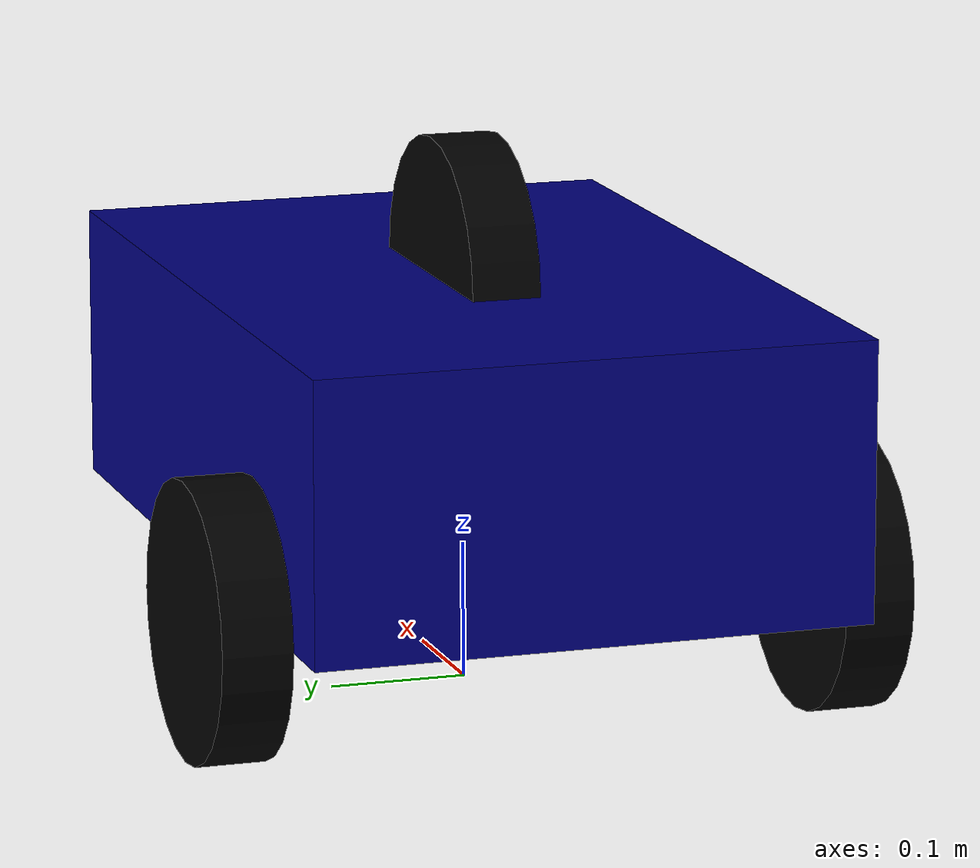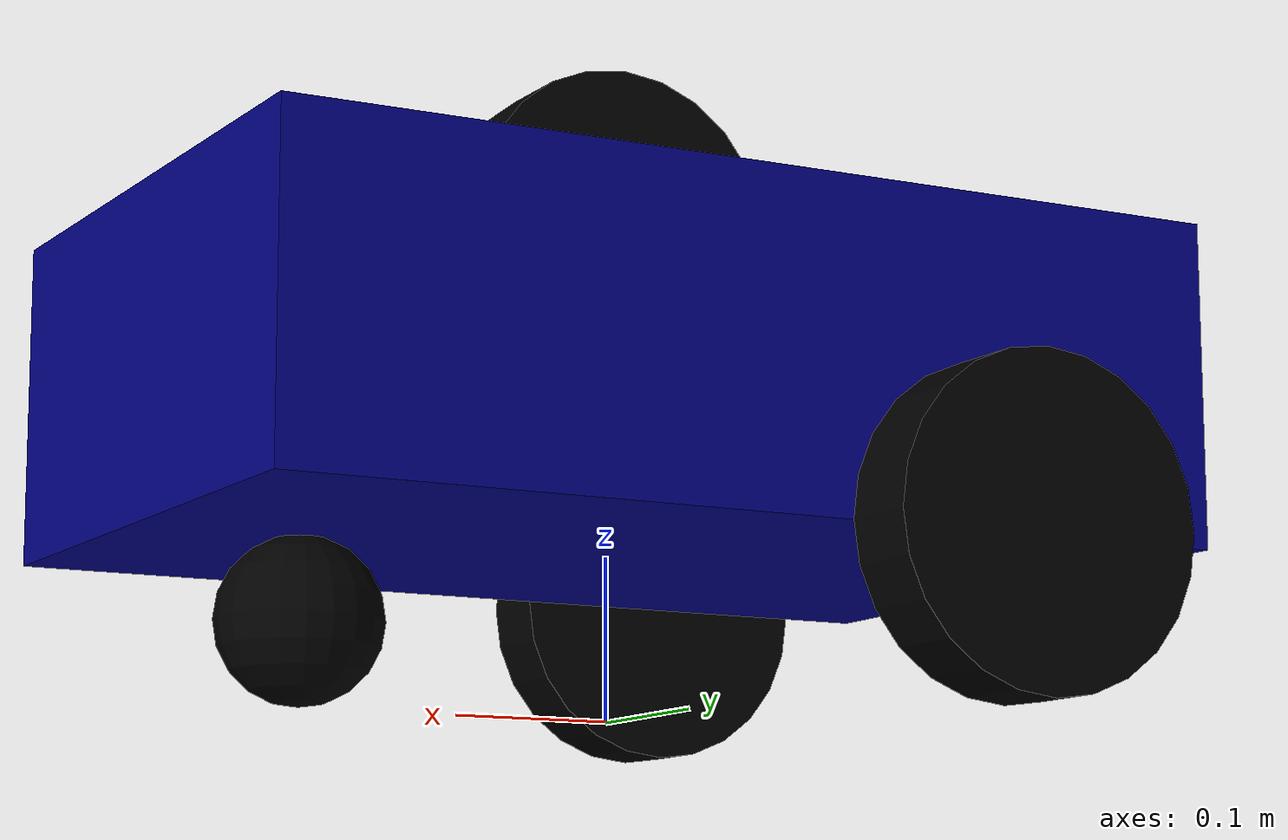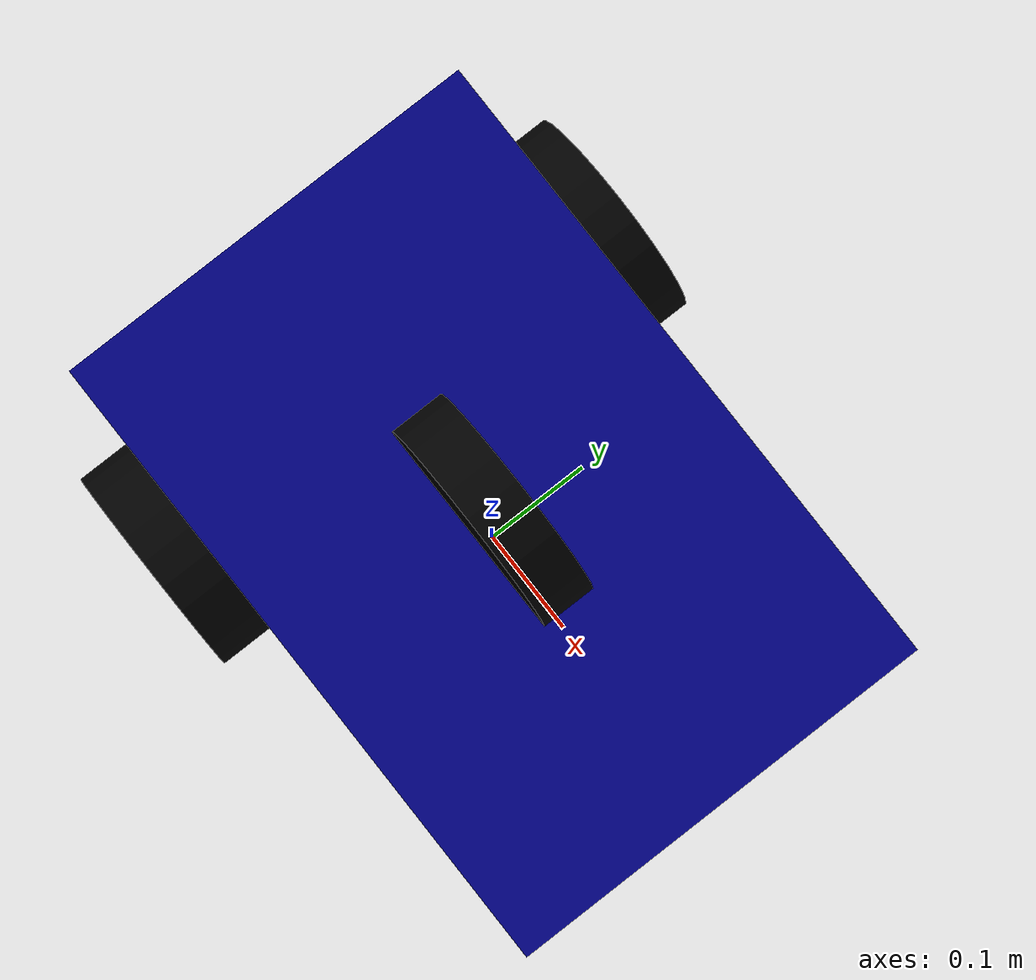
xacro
<?xml version="1.0"?>
<robot name="my_robot" xmlns:xacro="http://www.ros.org/wiki/xacro">

    <xacro:include filename="common_properties.xacro" />
    <xacro:include filename="mobile_base_gazebo.xacro" />

    <xacro:property name="base_length" value="0.6" />
    <xacro:property name="base_width" value="0.4" />
    <xacro:property name="base_height" value="0.2" />
    <xacro:property name="wheel_radius" value="0.1" />
    <xacro:property name="wheel_length" value="0.05" />

    <material name="blue">
        <color rgba="0 0 0.5 1" />
    </material>

    <material name="grey">
        <color rgba="0.5 0.5 0.5 1" />
    </material>

    <material name="red">
        <color rgba="0.5 0 0 1" />
    </material>

    <material name="black">
        <color rgba="0 0 0 1" />
    </material>

    <link name="base_footprint" />

    <link name="base_link">
        <visual>
            <geometry>
                <box size="${base_length} ${base_width} ${base_height}" />
            </geometry>
            <origin xyz="0 0 ${base_height / 2.0}" rpy="0 0 0" />
            <material name="blue" />
        </visual>
        <collision>
            <geometry>
                <box size="${base_length} ${base_width} ${base_height}" />
            </geometry>
            <origin xyz="0 0 ${base_height / 2.0}" rpy="0 0 0" />
        </collision>
        <xacro:box_inertia m="5.0" x="${base_length}" y="${base_width}" z="${base_height}" o_xyz="0 0 ${base_height / 2.0}" o_rpy="0 0 0" />
    </link>

    <joint name="base_joint" type="fixed">
        <parent link="base_footprint" />
        <child link="base_link" />
        <origin xyz="0 0 ${wheel_radius}" rpy="0 0 0" />
    </joint>

    <link name="right_wheel_link">
        <visual>
            <geometry>
                <cylinder radius="${wheel_radius}" length="${wheel_length}" />
            </geometry>
            <origin xyz="0 0 0" rpy="${pi / 2.0} 0 0" />
            <material name="black" />
        </visual>
        <collision>
            <geometry>
                <sphere radius="${wheel_radius}" />
            </geometry>
            <origin xyz="0 0 0" rpy="0 0 0" />
        </collision>
        <xacro:cylinder_inertia m="1.0" r="${wheel_radius}" l="${wheel_length}" o_xyz="0 0 0" o_rpy="${pi / 2.0} 0 0" />
    </link>

    <joint name="base_right_wheel_joint" type="continuous">
        <parent link="base_link" />
        <child link="right_wheel_link" />
        <origin xyz="${-base_length / 4.0} -0.225 0" rpy="0 0 0" />
        <axis xyz="0 1 0" />
    </joint>

    <link name="left_wheel_link">
        <visual>
            <geometry>
                <cylinder radius="${wheel_radius}" length="${wheel_length}" />
            </geometry>
            <origin xyz="0 0 0" rpy="${pi / 2.0} 0 0" />
            <material name="black" />
        </visual>
        <collision>
            <geometry>
                <sphere radius="${wheel_radius}" />
            </geometry>
            <origin xyz="0 0 0" rpy="0 0 0" />
        </collision>
        <xacro:cylinder_inertia m="1.0" r="${wheel_radius}" l="${wheel_length}" o_xyz="0 0 0" o_rpy="${pi / 2.0} 0 0" />
    </link>

    <joint name="base_left_wheel_joint" type="continuous">
        <parent link="base_link" />
        <child link="left_wheel_link" />
        <origin xyz="${-base_length / 4.0} 0.225 0" rpy="0 0 0" />
        <axis xyz="0 1 0" />
    </joint>

    <link name="top_wheel_link">
        <visual>
            <geometry>
                <cylinder radius="${wheel_radius}" length="${wheel_length}" />
            </geometry>
            <origin xyz="0 0 0" rpy="${pi / 2.0} 0 0" />
            <material name="black" />
        </visual>
        <collision>
            <geometry>
                <sphere radius="${wheel_radius}" />
            </geometry>
            <origin xyz="0 0 0" rpy="0 0 0" />
        </collision>
        <xacro:cylinder_inertia m="1.0" r="${wheel_radius}" l="${wheel_length}" o_xyz="0 0 0" o_rpy="${pi / 2.0} 0 0" />
    </link>

    <joint name="base_top_wheel_joint" type="continuous">
        <parent link="base_link" />
        <child link="top_wheel_link" />
        <origin xyz="0 0 ${base_height

        }" rpy="0 0 0" />
        <axis xyz="0 1 0" />
    </joint>

    <link name="caster_wheel_link">
        <visual>
            <geometry>
                <sphere radius="${wheel_radius / 2.0}" />
            </geometry>
            <origin xyz="0 0 0" rpy="0 0 0" />
            <material name="black" />
        </visual>
        <collision>
            <geometry>
                <sphere radius="${wheel_radius / 2.0}" />
            </geometry>
            <origin xyz="0 0 0" rpy="0 0 0" />
        </collision>
        <xacro:sphere_inertia m="0.5" r="${wheel_radius / 2.0}" o_xyz="0 0 0" o_rpy="0 0 0" />
    </link>

    <joint name="base_caster_wheel_joint" type="fixed">
        <parent link="base_link" />
        <child link="caster_wheel_link" />
        <origin xyz="${base_length / 3.0} 0 -0.05" rpy="0 0 0" />
    </joint>

</robot>
